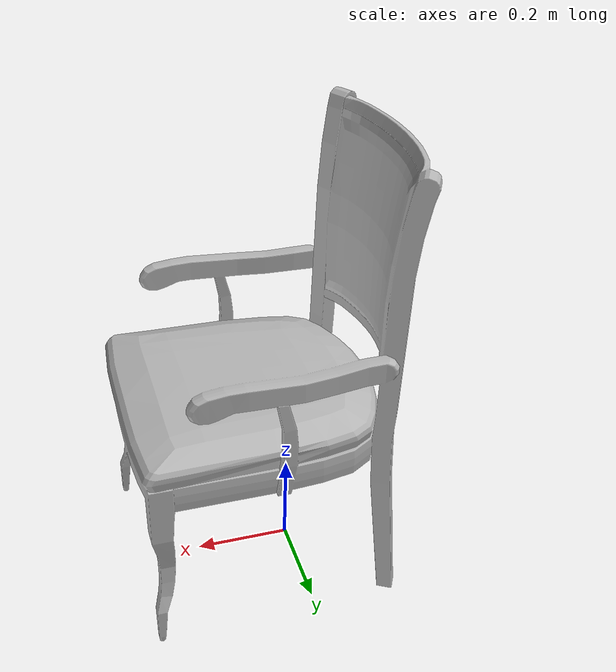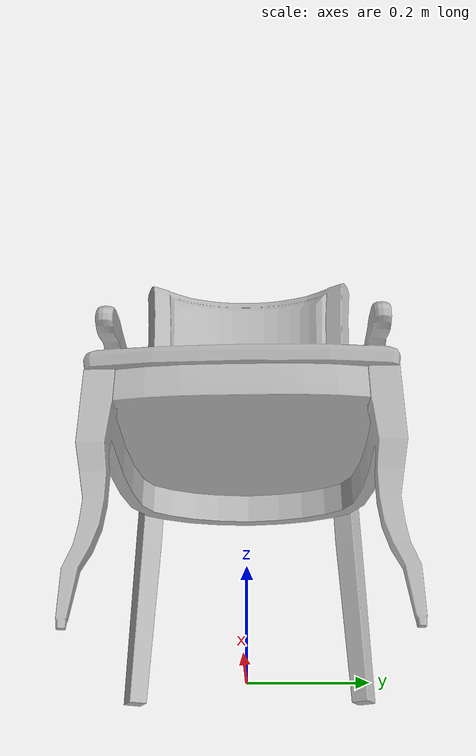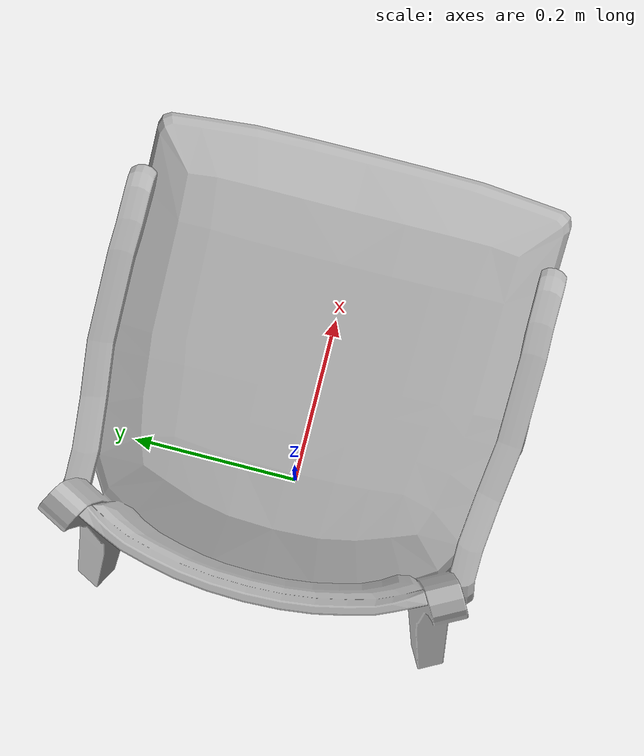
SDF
<?xml version='1.0'?>
<sdf version='1.4'>
  <model name='352'>
    <pose>0 0 0 0 0 0</pose>
    <static>true</static>
    <link name='link'>
      <collision name='collision'>
        <pose>0 0 0 0 0 0</pose>
        <geometry>
          <box>
            <size>0.572605 0.509146 2</size>
          </box>
        </geometry>
      </collision>
      <visual name='visual'>
        <pose>0 0 0 0 0 0</pose>
        <geometry>
          <mesh><uri>model://352/352.dae</uri></mesh>
        </geometry>
      </visual>
    </link>
  </model>
</sdf>
